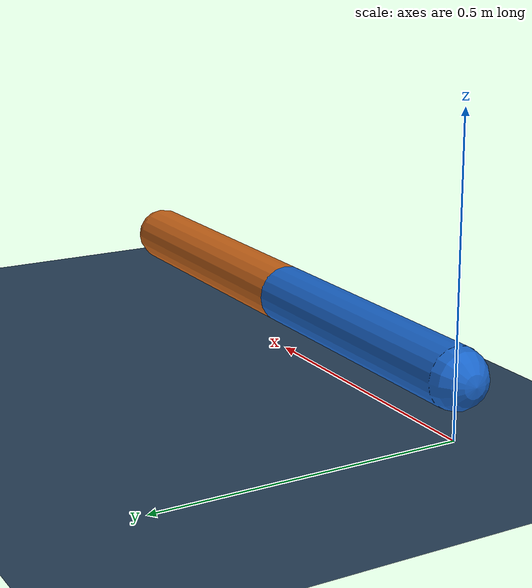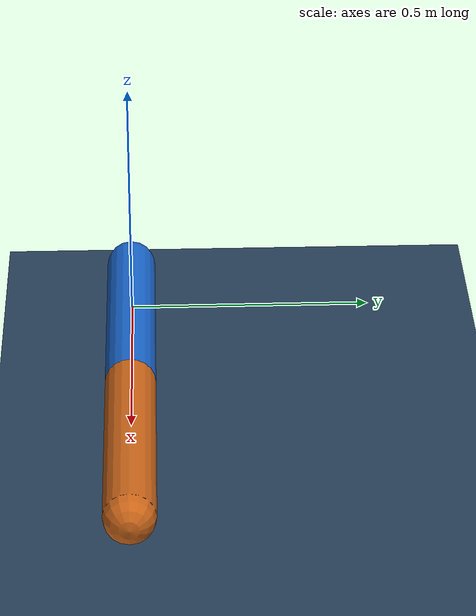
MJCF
<mujoco model="two_link_planar scene">

  <include file="two_link_planar.xml"/>

  <statistic center="0.2 0 0.2" extent="1.0"/>

  <visual>
    <headlight diffuse="0.6 0.6 0.6" ambient="0.3 0.3 0.3" specular="0 0 0"/>
    <rgba haze="0.15 0.25 0.35 1"/>
    <global azimuth="-120" elevation="-20"/>
  </visual>

  <asset>
    <texture type="skybox" builtin="gradient" rgb1="0.3 0.5 0.7" rgb2="0 0 0" width="512" height="3072"/>
    <texture type="2d" name="groundplane" builtin="checker" mark="edge" rgb1="0.2 0.3 0.4" rgb2="0.1 0.2 0.3"
      markrgb="0.8 0.8 0.8" width="300" height="300"/>
    <material name="groundplane" texture="groundplane" texuniform="true" texrepeat="5 5" reflectance="0.2"/>
  </asset>

  <worldbody>
    <light pos="0 0 1.5" dir="0 0 -1" directional="true"/>
    <geom name="floor" size="0 0 0.05" type="plane" material="groundplane"/>
  </worldbody>
</mujoco>

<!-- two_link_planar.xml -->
<mujoco model="two_link_planar">
    <compiler angle="degree" coordinate="local"/>
    <option timestep="0.001" gravity="0 0 -9.81"/>

    <worldbody>

        <!-- Base of the robot -->
        <body name="base" pos="0 0 0.1">
            <!-- First joint and link -->
            <joint name="joint1" type="hinge" axis="0 0 1" limited="true" range="-180 180"/>
            <geom name="link1" type="capsule" fromto="0 0 0 0.5 0 0" size="0.05" rgba="0.1 0.4 0.8 1"/>

            <!-- Second joint and link -->
            <body name="link2_body" pos="0.5 0 0">
                <joint name="joint2" type="hinge" axis="0 0 1" limited="true" range="-180 180"/>
                <geom name="link2" type="capsule" fromto="0 0 0 0.5 0 0" size="0.05" rgba="0.8 0.4 0.1 1"/>

                <!-- End effector marker -->
                <site name="ee_site" pos="0.5 0 0" size="0.02" rgba="1 0 0 1"/>
            </body>
        </body>
    </worldbody>

    <actuator>
        <motor name="motor1" joint="joint1" ctrlrange="-10 10" ctrllimited="true"/>
        <motor name="motor2" joint="joint2" ctrlrange="-10 10" ctrllimited="true"/>
    </actuator>
</mujoco>
